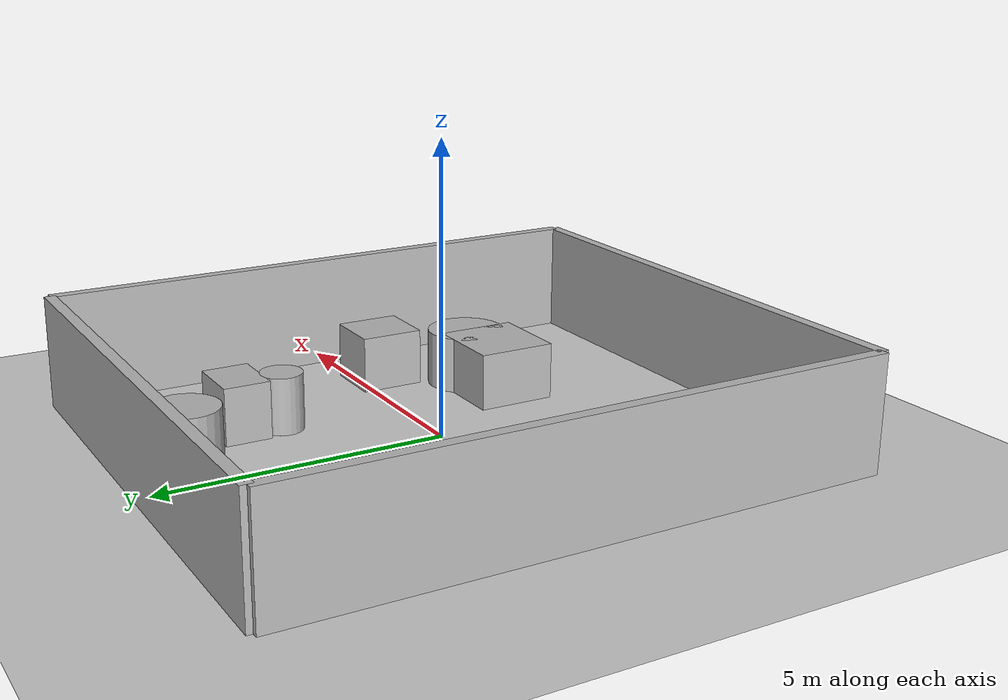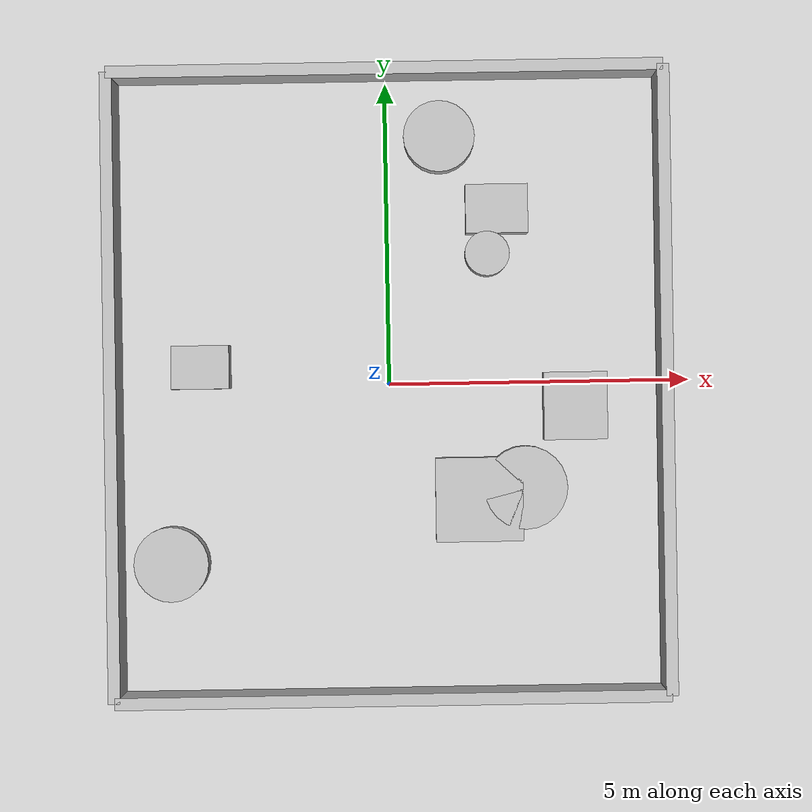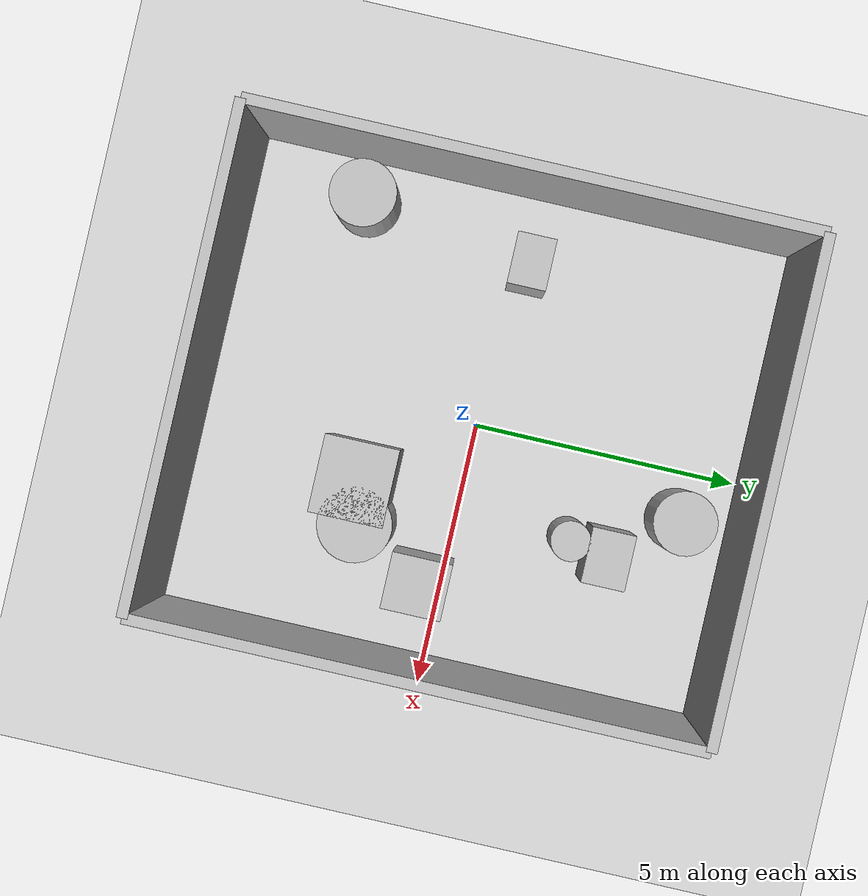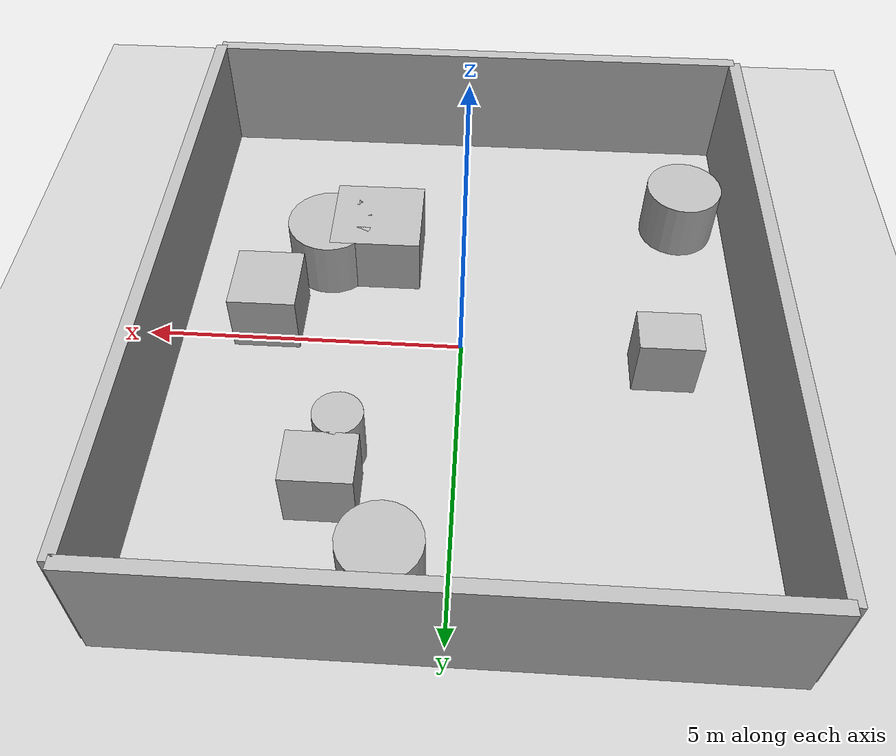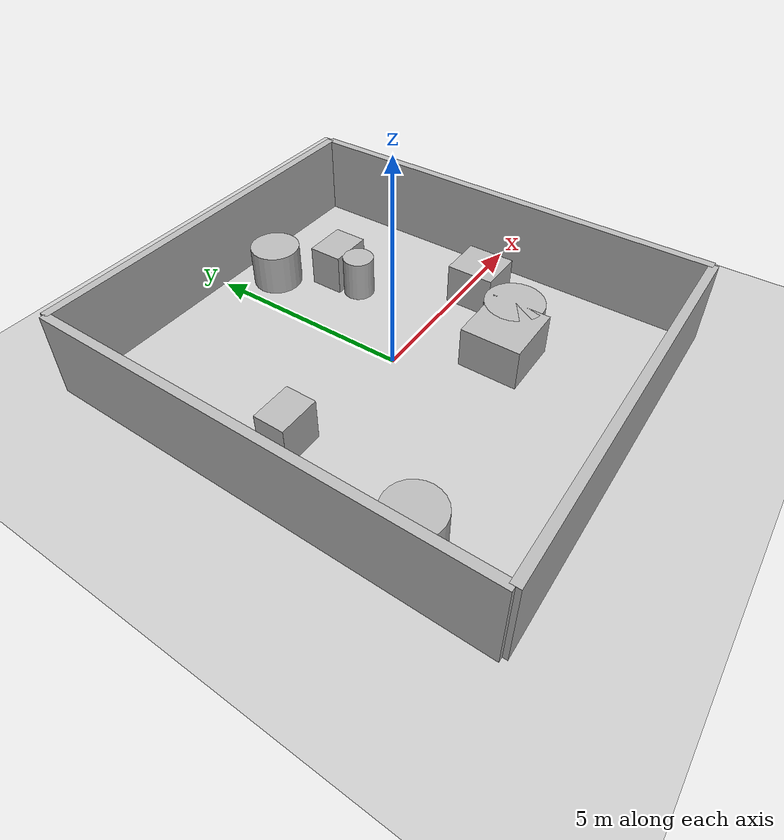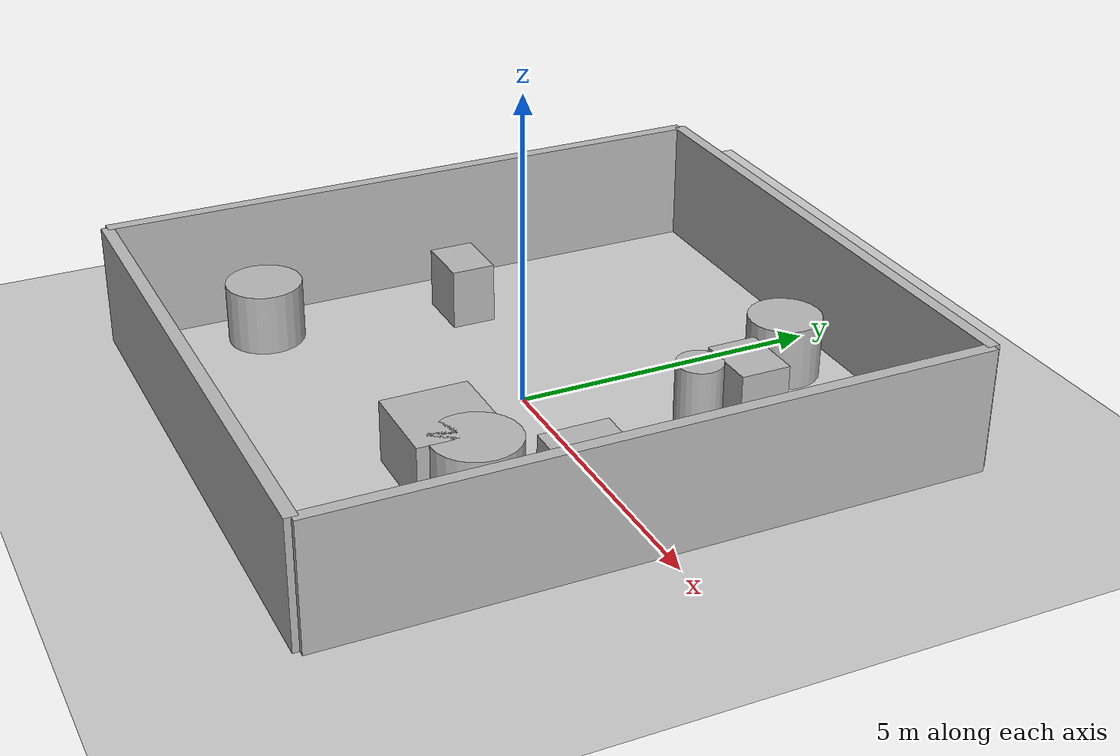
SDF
<?xml version="1.0"?>
<sdf version="1.6">
  <world name="env_52">

    <include><uri>model://ground_plane</uri></include>
    <include><uri>model://sun</uri></include>

    <!-- WALLS -->
    <model name="wall_north"><static>true</static><pose>0 5.16565022935206 1 0 0 0</pose>
      <link name="link"><collision name="collision">
        <geometry><box><size>9.118267185625411 0.2 2</size></box></geometry>
      </collision><visual name="visual">
        <geometry><box><size>9.118267185625411 0.2 2</size></box></geometry>
      </visual></link>
    </model>

    <model name="wall_south"><static>true</static><pose>0 -5.16565022935206 1 0 0 0</pose>
      <link name="link"><collision name="collision">
        <geometry><box><size>9.118267185625411 0.2 2</size></box></geometry>
      </collision><visual name="visual">
        <geometry><box><size>9.118267185625411 0.2 2</size></box></geometry>
      </visual></link>
    </model>

    <model name="wall_east"><static>true</static><pose>4.559133592812706 0 1 0 0 1.57</pose>
      <link name="link"><collision name="collision">
        <geometry><box><size>10.33130045870412 0.2 2</size></box></geometry>
      </collision><visual name="visual">
        <geometry><box><size>10.33130045870412 0.2 2</size></box></geometry>
      </visual></link>
    </model>

    <model name="wall_west"><static>true</static><pose>-4.559133592812706 0 1 0 0 1.57</pose>
      <link name="link"><collision name="collision">
        <geometry><box><size>10.33130045870412 0.2 2</size></box></geometry>
      </collision><visual name="visual">
        <geometry><box><size>10.33130045870412 0.2 2</size></box></geometry>
      </visual></link>
    </model>

    <!-- SENSOR -->

    <model name="lidar_sensor">
      <static>true</static>
      <pose>-0.695374670356181 2.0653426057988664 0.4 0 0 0</pose>
      <link name="link">
        <sensor name="lidar" type="ray">
          <pose>0 0 0 0 0 0</pose>
          <visualize>true</visualize>
          <always_on>true</always_on>
          <update_rate>10</update_rate>
          <ray>
            <scan><horizontal>
              <samples>720</samples>
              <resolution>1</resolution>
              <min_angle>-3.14159</min_angle>
              <max_angle>3.14159</max_angle>
            </horizontal></scan>
            <range><min>0.15</min><max>20.0</max><resolution>0.01</resolution></range>
          </ray>
          <plugin name="lidar_plugin" filename="liblidar_plugin.so"/>
        </sensor>
      </link>
    </model>

    <!-- OBSTACLES -->

    <model name="obstacle_0">
      <static>true</static>
      <pose>-3.6488076222631367 -2.9324734930021252 0.5 0 0 0</pose>
      <link name="link">
        <collision name="collision">
          <geometry><cylinder><radius>0.62</radius><length>1.0</length></cylinder></geometry>
        </collision>
        <visual name="visual">
          <geometry><cylinder><radius>0.62</radius><length>1.0</length></cylinder></geometry>
        </visual>
      </link>
    </model>

    <model name="obstacle_1">
      <static>true</static>
      <pose>0.8860436641269249 4.087470355382729 0.5 0 0 0</pose>
      <link name="link">
        <collision name="collision">
          <geometry><cylinder><radius>0.59</radius><length>1.0</length></cylinder></geometry>
        </collision>
        <visual name="visual">
          <geometry><cylinder><radius>0.59</radius><length>1.0</length></cylinder></geometry>
        </visual>
      </link>
    </model>

    <model name="obstacle_2">
      <static>true</static>
      <pose>1.4664092556148418 -1.9331747804662296 0.5 0 0 0</pose>
      <link name="link">
        <collision name="collision">
          <geometry><box><size>1.45 1.39 1.0</size></box></geometry>
        </collision>
        <visual name="visual">
          <geometry><box><size>1.45 1.39 1.0</size></box></geometry>
        </visual>
      </link>
    </model>

    <model name="obstacle_3">
      <static>true</static>
      <pose>1.8221470084405498 2.8769141710194717 0.5 0 0 0</pose>
      <link name="link">
        <collision name="collision">
          <geometry><box><size>1.03 0.81 1.0</size></box></geometry>
        </collision>
        <visual name="visual">
          <geometry><box><size>1.03 0.81 1.0</size></box></geometry>
        </visual>
      </link>
    </model>

    <model name="obstacle_4">
      <static>true</static>
      <pose>2.2389774925092105 -1.7472829961507221 0.5 0 0 0</pose>
      <link name="link">
        <collision name="collision">
          <geometry><cylinder><radius>0.69</radius><length>1.0</length></cylinder></geometry>
        </collision>
        <visual name="visual">
          <geometry><cylinder><radius>0.69</radius><length>1.0</length></cylinder></geometry>
        </visual>
      </link>
    </model>

    <model name="obstacle_5">
      <static>true</static>
      <pose>1.6551240643500247 2.1361428898191726 0.5 0 0 0</pose>
      <link name="link">
        <collision name="collision">
          <geometry><cylinder><radius>0.37</radius><length>1.0</length></cylinder></geometry>
        </collision>
        <visual name="visual">
          <geometry><cylinder><radius>0.37</radius><length>1.0</length></cylinder></geometry>
        </visual>
      </link>
    </model>

    <model name="obstacle_6">
      <static>true</static>
      <pose>-3.1242869194752023 0.3238074628085741 0.5 0 0 0</pose>
      <link name="link">
        <collision name="collision">
          <geometry><box><size>0.96 0.72 1.0</size></box></geometry>
        </collision>
        <visual name="visual">
          <geometry><box><size>0.96 0.72 1.0</size></box></geometry>
        </visual>
      </link>
    </model>

    <model name="obstacle_7">
      <static>true</static>
      <pose>3.078278250839805 -0.4053183210969413 0.5 0 0 0</pose>
      <link name="link">
        <collision name="collision">
          <geometry><box><size>1.05 1.12 1.0</size></box></geometry>
        </collision>
        <visual name="visual">
          <geometry><box><size>1.05 1.12 1.0</size></box></geometry>
        </visual>
      </link>
    </model>

  </world>
</sdf>
